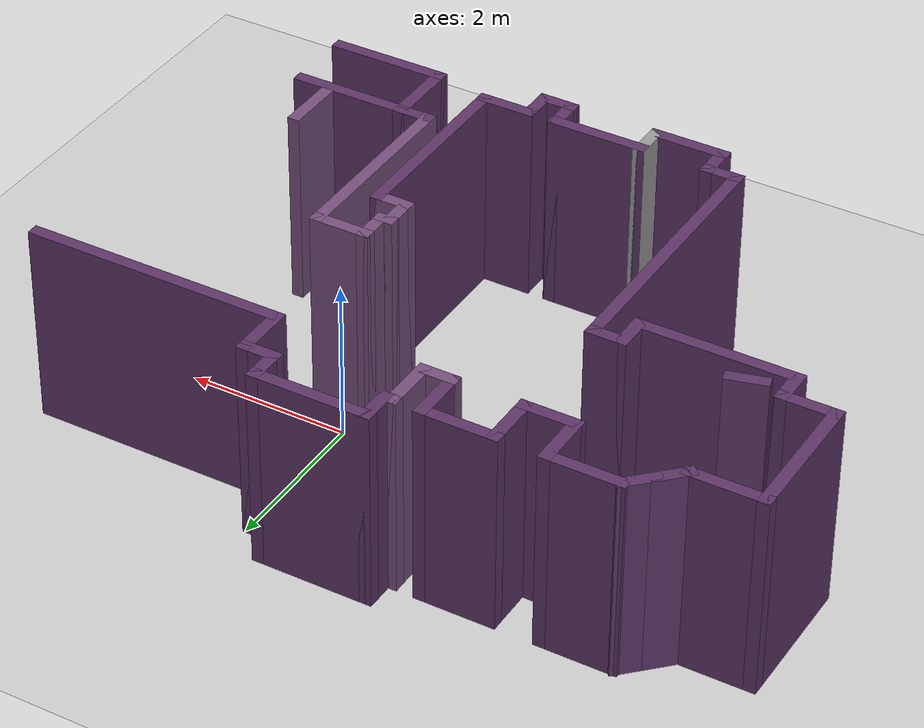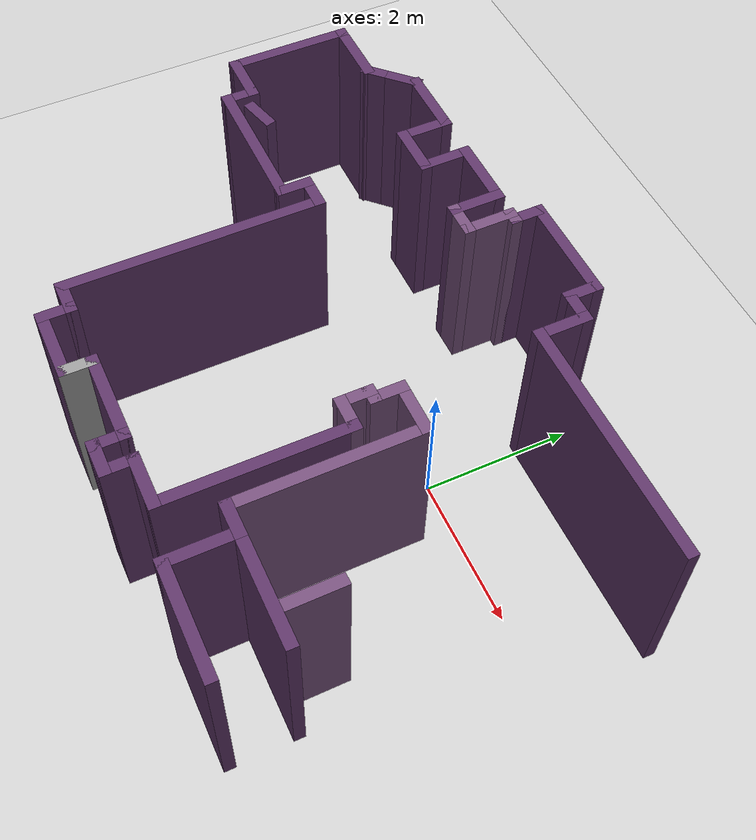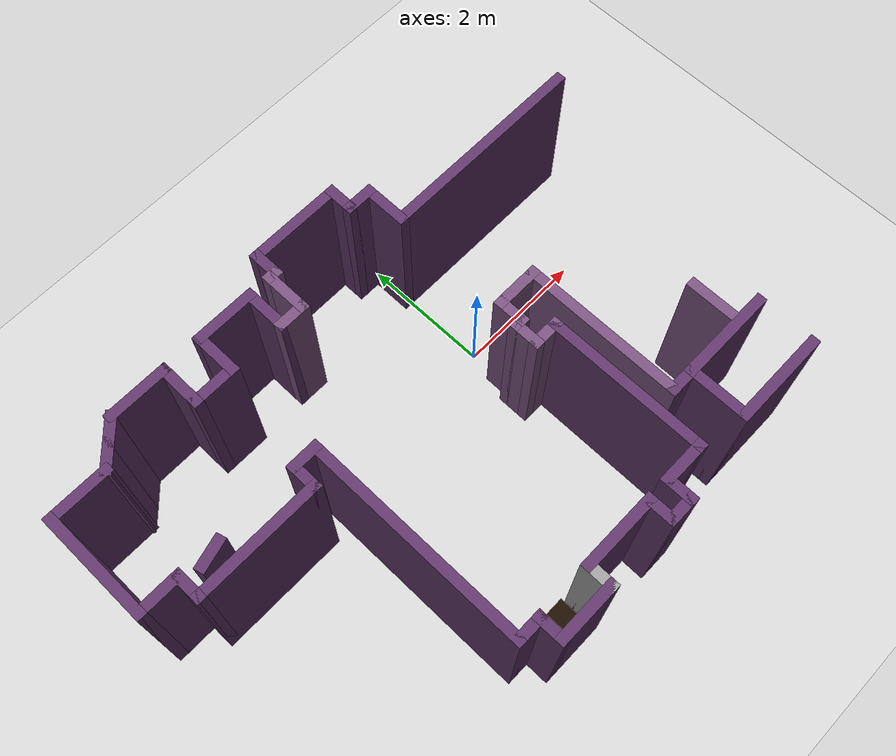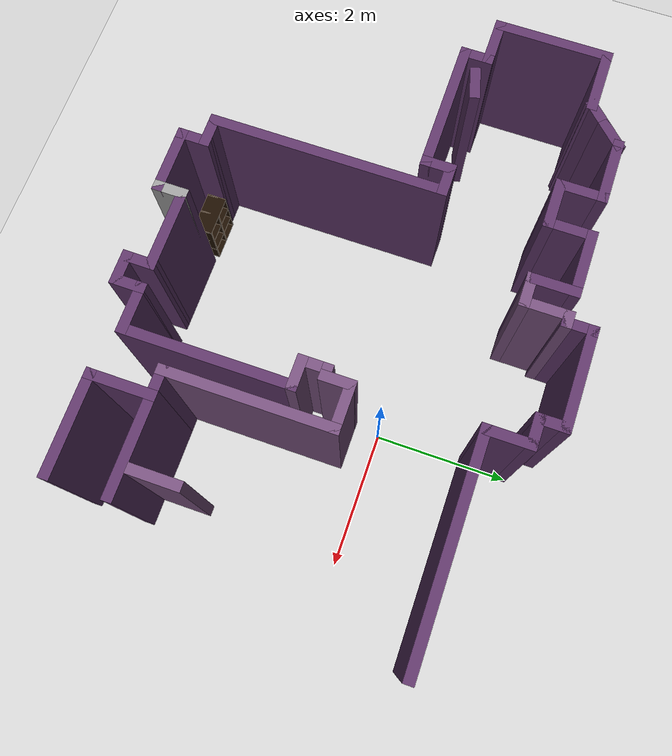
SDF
<sdf version="1.6">
 <world name="default">
  <model name="ground_plane">
   <static>1</static>
   <link name="link">
    <collision name="collision">
     <geometry><plane><normal>0 0 1</normal><size>100 100</size></plane></geometry>
     <surface>
      <contact><collide_bitmask>65535</collide_bitmask></contact>
      <friction><ode><mu>100</mu><mu2>50</mu2></ode></friction>
     </surface>
    </collision>
    <visual name="visual">
     <cast_shadows>0</cast_shadows>
     <geometry><plane><normal>0 0 1</normal><size>100 100</size></plane></geometry>
     <material>
      <script><uri>file://media/materials/scripts/gazebo.material</uri><name>Gazebo/Grey</name></script>
     </material>
    </visual>
   </link>
  </model>
  <model name="map_35">
   <pose>1.49139 -0.27307 0 0 -0 0</pose>
   <link name="Wall_10">
    <collision name="Wall_10_Collision">
     <geometry><box><size>1.5 0.15 2.5</size></box></geometry>
     <pose>0 0 1.25 0 -0 0</pose>
    </collision>
    <visual name="Wall_10_Visual">
     <pose>0 0 1.25 0 -0 0</pose>
     <geometry><box><size>1.5 0.15 2.5</size></box></geometry>
     <material>
      <script><uri>file://media/materials/scripts/gazebo.material</uri><name>Gazebo/Grey</name></script>
      <ambient>0.360784 0.207843 0.4 1</ambient>
     </material>
     <meta><layer>0</layer></meta>
    </visual>
    <pose>-2.56239 2.57249 0 0 -0 3.14159</pose>
   </link>
   <link name="Wall_11">
    <collision name="Wall_11_Collision">
     <geometry><box><size>0.5 0.15 2.5</size></box></geometry>
     <pose>0 0 1.25 0 -0 0</pose>
    </collision>
    <visual name="Wall_11_Visual">
     <pose>0 0 1.25 0 -0 0</pose>
     <geometry><box><size>0.5 0.15 2.5</size></box></geometry>
     <material>
      <script><uri>file://media/materials/scripts/gazebo.material</uri><name>Gazebo/Grey</name></script>
      <ambient>0.360784 0.207843 0.4 1</ambient>
     </material>
     <meta><layer>0</layer></meta>
    </visual>
    <pose>-3.23739 2.39749 0 0 -0 -1.5708</pose>
   </link>
   <link name="Wall_12">
    <collision name="Wall_12_Collision">
     <geometry><box><size>0.25 0.15 2.5</size></box></geometry>
     <pose>0 0 1.25 0 -0 0</pose>
    </collision>
    <visual name="Wall_12_Visual">
     <pose>0 0 1.25 0 -0 0</pose>
     <geometry><box><size>0.25 0.15 2.5</size></box></geometry>
     <material>
      <script><uri>file://media/materials/scripts/gazebo.material</uri><name>Gazebo/Grey</name></script>
      <ambient>0.458824 0.313726 0.482353 1</ambient>
     </material>
     <meta><layer>0</layer></meta>
    </visual>
    <pose>-3.28739 2.22249 0 0 -0 3.14159</pose>
   </link>
   <link name="Wall_13">
    <collision name="Wall_13_Collision">
     <geometry><box><size>0.75 0.15 2.5</size></box></geometry>
     <pose>0 0 1.25 0 -0 0</pose>
    </collision>
    <visual name="Wall_13_Visual">
     <pose>0 0 1.25 0 -0 0</pose>
     <geometry><box><size>0.75 0.15 2.5</size></box></geometry>
     <material>
      <script><uri>file://media/materials/scripts/gazebo.material</uri><name>Gazebo/Grey</name></script>
      <ambient>0.458824 0.313726 0.482353 1</ambient>
     </material>
     <meta><layer>0</layer></meta>
    </visual>
    <pose>-3.33739 1.92249 0 0 -0 -1.5708</pose>
   </link>
   <link name="Wall_14">
    <collision name="Wall_14_Collision">
     <geometry><box><size>0.5 0.15 2.5</size></box></geometry>
     <pose>0 0 1.25 0 -0 0</pose>
    </collision>
    <visual name="Wall_14_Visual">
     <pose>0 0 1.25 0 -0 0</pose>
     <geometry><box><size>0.5 0.15 2.5</size></box></geometry>
     <material>
      <script><uri>file://media/materials/scripts/gazebo.material</uri><name>Gazebo/Grey</name></script>
      <ambient>0.458824 0.313726 0.482353 1</ambient>
     </material>
     <meta><layer>0</layer></meta>
    </visual>
    <pose>-3.51239 1.62249 0 0 -0 3.14159</pose>
   </link>
   <link name="Wall_155">
    <collision name="Wall_155_Collision">
     <geometry><box><size>0.5 0.15 2.5</size></box></geometry>
     <pose>0 0 1.25 0 -0 0</pose>
    </collision>
    <visual name="Wall_155_Visual">
     <pose>0 0 1.25 0 -0 0</pose>
     <geometry><box><size>0.5 0.15 2.5</size></box></geometry>
     <material>
      <script><uri>file://media/materials/scripts/gazebo.material</uri><name>Gazebo/Grey</name></script>
      <ambient>0.360784 0.207843 0.4 1</ambient>
     </material>
     <meta><layer>0</layer></meta>
    </visual>
    <pose>-6.29627 0.057679 0 0 -0 0.261799</pose>
   </link>
   <link name="Wall_17">
    <collision name="Wall_17_Collision">
     <geometry><box><size>0.75 0.15 2.5</size></box></geometry>
     <pose>0 0 1.25 0 -0 0</pose>
    </collision>
    <visual name="Wall_17_Visual">
     <pose>0 0 1.25 0 -0 0</pose>
     <geometry><box><size>0.75 0.15 2.5</size></box></geometry>
     <material>
      <script><uri>file://media/materials/scripts/gazebo.material</uri><name>Gazebo/Grey</name></script>
      <ambient>0.360784 0.207843 0.4 1</ambient>
     </material>
     <meta><layer>0</layer></meta>
    </visual>
    <pose>-3.68739 1.92249 0 0 -0 1.5708</pose>
   </link>
   <link name="Wall_18">
    <collision name="Wall_18_Collision">
     <geometry><box><size>1 0.15 2.5</size></box></geometry>
     <pose>0 0 1.25 0 -0 0</pose>
    </collision>
    <visual name="Wall_18_Visual">
     <pose>0 0 1.25 0 -0 0</pose>
     <geometry><box><size>1 0.15 2.5</size></box></geometry>
     <material>
      <script><uri>file://media/materials/scripts/gazebo.material</uri><name>Gazebo/Grey</name></script>
      <ambient>0.360784 0.207843 0.4 1</ambient>
     </material>
     <meta><layer>0</layer></meta>
    </visual>
    <pose>-4.11239 2.22249 0 0 -0 3.14159</pose>
   </link>
   <link name="Wall_19">
    <collision name="Wall_19_Collision">
     <geometry><box><size>0.75 0.15 2.5</size></box></geometry>
     <pose>0 0 1.25 0 -0 0</pose>
    </collision>
    <visual name="Wall_19_Visual">
     <pose>0 0 1.25 0 -0 0</pose>
     <geometry><box><size>0.75 0.15 2.5</size></box></geometry>
     <material>
      <script><uri>file://media/materials/scripts/gazebo.material</uri><name>Gazebo/Grey</name></script>
      <ambient>0.360784 0.207843 0.4 1</ambient>
     </material>
     <meta><layer>0</layer></meta>
    </visual>
    <pose>-4.53739 1.92249 0 0 -0 -1.5708</pose>
   </link>
   <link name="Wall_20">
    <collision name="Wall_20_Collision">
     <geometry><box><size>0.75 0.15 2.5</size></box></geometry>
     <pose>0 0 1.25 0 -0 0</pose>
    </collision>
    <visual name="Wall_20_Visual">
     <pose>0 0 1.25 0 -0 0</pose>
     <geometry><box><size>0.75 0.15 2.5</size></box></geometry>
     <material>
      <script><uri>file://media/materials/scripts/gazebo.material</uri><name>Gazebo/Grey</name></script>
      <ambient>0.360784 0.207843 0.4 1</ambient>
     </material>
     <meta><layer>0</layer></meta>
    </visual>
    <pose>-4.83739 1.62249 0 0 -0 3.14159</pose>
   </link>
   <link name="Wall_21">
    <collision name="Wall_21_Collision">
     <geometry><box><size>0.75 0.15 2.5</size></box></geometry>
     <pose>0 0 1.25 0 -0 0</pose>
    </collision>
    <visual name="Wall_21_Visual">
     <pose>0 0 1.25 0 -0 0</pose>
     <geometry><box><size>0.75 0.15 2.5</size></box></geometry>
     <material>
      <script><uri>file://media/materials/scripts/gazebo.material</uri><name>Gazebo/Grey</name></script>
      <ambient>0.360784 0.207843 0.4 1</ambient>
     </material>
     <meta><layer>0</layer></meta>
    </visual>
    <pose>-5.13739 1.92249 0 0 -0 1.5708</pose>
   </link>
   <link name="Wall_22">
    <collision name="Wall_22_Collision">
     <geometry><box><size>1 0.15 2.5</size></box></geometry>
     <pose>0 0 1.25 0 -0 0</pose>
    </collision>
    <visual name="Wall_22_Visual">
     <pose>0 0 1.25 0 -0 0</pose>
     <geometry><box><size>1 0.15 2.5</size></box></geometry>
     <material>
      <script><uri>file://media/materials/scripts/gazebo.material</uri><name>Gazebo/Grey</name></script>
      <ambient>0.360784 0.207843 0.4 1</ambient>
     </material>
     <meta><layer>0</layer></meta>
    </visual>
    <pose>-5.56239 2.22249 0 0 -0 3.14159</pose>
   </link>
   <link name="Wall_23">
    <collision name="Wall_23_Collision">
     <geometry><box><size>0.5 0.15 2.5</size></box></geometry>
     <pose>0 0 1.25 0 -0 0</pose>
    </collision>
    <visual name="Wall_23_Visual">
     <pose>0 0 1.25 0 -0 0</pose>
     <geometry><box><size>0.5 0.15 2.5</size></box></geometry>
     <material>
      <script><uri>file://media/materials/scripts/gazebo.material</uri><name>Gazebo/Grey</name></script>
      <ambient>0.360784 0.207843 0.4 1</ambient>
     </material>
     <meta><layer>0</layer></meta>
    </visual>
    <pose>-6.11113 2.09874 0 0 -0 -2.35619</pose>
   </link>
   <link name="Wall_24">
    <collision name="Wall_24_Collision">
     <geometry><box><size>0.5 0.15 2.5</size></box></geometry>
     <pose>0 0 1.25 0 -0 0</pose>
    </collision>
    <visual name="Wall_24_Visual">
     <pose>0 0 1.25 0 -0 0</pose>
     <geometry><box><size>0.5 0.15 2.5</size></box></geometry>
     <material>
      <script><uri>file://media/materials/scripts/gazebo.material</uri><name>Gazebo/Grey</name></script>
      <ambient>0.360784 0.207843 0.4 1</ambient>
     </material>
     <meta><layer>0</layer></meta>
    </visual>
    <pose>-6.35862 1.85126 0 0 -0 -2.35619</pose>
   </link>
   <link name="Wall_25">
    <collision name="Wall_25_Collision">
     <geometry><box><size>1 0.15 2.5</size></box></geometry>
     <pose>0 0 1.25 0 -0 0</pose>
    </collision>
    <visual name="Wall_25_Visual">
     <pose>0 0 1.25 0 -0 0</pose>
     <geometry><box><size>1 0.15 2.5</size></box></geometry>
     <material>
      <script><uri>file://media/materials/scripts/gazebo.material</uri><name>Gazebo/Grey</name></script>
      <ambient>0.360784 0.207843 0.4 1</ambient>
     </material>
     <meta><layer>0</layer></meta>
    </visual>
    <pose>-6.90736 1.72751 0 0 -0 3.14159</pose>
   </link>
   <link name="Wall_26">
    <collision name="Wall_26_Collision">
     <geometry><box><size>1.75 0.15 2.5</size></box></geometry>
     <pose>0 0 1.25 0 -0 0</pose>
    </collision>
    <visual name="Wall_26_Visual">
     <pose>0 0 1.25 0 -0 0</pose>
     <geometry><box><size>1.75 0.15 2.5</size></box></geometry>
     <material>
      <script><uri>file://media/materials/scripts/gazebo.material</uri><name>Gazebo/Grey</name></script>
      <ambient>0.360784 0.207843 0.4 1</ambient>
     </material>
     <meta><layer>0</layer></meta>
    </visual>
    <pose>-7.33236 0.927513 0 0 -0 -1.5708</pose>
   </link>
   <link name="Wall_27">
    <collision name="Wall_27_Collision">
     <geometry><box><size>0.75 0.15 2.5</size></box></geometry>
     <pose>0 0 1.25 0 -0 0</pose>
    </collision>
    <visual name="Wall_27_Visual">
     <pose>0 0 1.25 0 -0 0</pose>
     <geometry><box><size>0.75 0.15 2.5</size></box></geometry>
     <material>
      <script><uri>file://media/materials/scripts/gazebo.material</uri><name>Gazebo/Grey</name></script>
      <ambient>0.360784 0.207843 0.4 1</ambient>
     </material>
     <meta><layer>0</layer></meta>
    </visual>
    <pose>-7.03236 0.127513 0 0 -0 0</pose>
   </link>
   <link name="Wall_28">
    <collision name="Wall_28_Collision">
     <geometry><box><size>0.5 0.15 2.5</size></box></geometry>
     <pose>0 0 1.25 0 -0 0</pose>
    </collision>
    <visual name="Wall_28_Visual">
     <pose>0 0 1.25 0 -0 0</pose>
     <geometry><box><size>0.5 0.15 2.5</size></box></geometry>
     <material>
      <script><uri>file://media/materials/scripts/gazebo.material</uri><name>Gazebo/Grey</name></script>
      <ambient>0.360784 0.207843 0.4 1</ambient>
     </material>
     <meta><layer>0</layer></meta>
    </visual>
    <pose>-6.73236 -0.047487 0 0 -0 -1.5708</pose>
   </link>
   <link name="Wall_29">
    <collision name="Wall_29_Collision">
     <geometry><box><size>2 0.15 2.5</size></box></geometry>
     <pose>0 0 1.25 0 -0 0</pose>
    </collision>
    <visual name="Wall_29_Visual">
     <pose>0 0 1.25 0 -0 0</pose>
     <geometry><box><size>2 0.15 2.5</size></box></geometry>
     <material>
      <script><uri>file://media/materials/scripts/gazebo.material</uri><name>Gazebo/Grey</name></script>
      <ambient>0.360784 0.207843 0.4 1</ambient>
     </material>
     <meta><layer>0</layer></meta>
    </visual>
    <pose>-5.80736 -0.222487 0 0 -0 0</pose>
   </link>
   <link name="Wall_30">
    <collision name="Wall_30_Collision">
     <geometry><box><size>0.5 0.15 2.5</size></box></geometry>
     <pose>0 0 1.25 0 -0 0</pose>
    </collision>
    <visual name="Wall_30_Visual">
     <pose>0 0 1.25 0 -0 0</pose>
     <geometry><box><size>0.5 0.15 2.5</size></box></geometry>
     <material>
      <script><uri>file://media/materials/scripts/gazebo.material</uri><name>Gazebo/Grey</name></script>
      <ambient>0.360784 0.207843 0.4 1</ambient>
     </material>
     <meta><layer>0</layer></meta>
    </visual>
    <pose>-4.88236 -0.047487 0 0 -0 1.5708</pose>
   </link>
   <link name="Wall_31">
    <collision name="Wall_31_Collision">
     <geometry><box><size>0.5 0.15 2.5</size></box></geometry>
     <pose>0 0 1.25 0 -0 0</pose>
    </collision>
    <visual name="Wall_31_Visual">
     <pose>0 0 1.25 0 -0 0</pose>
     <geometry><box><size>0.5 0.15 2.5</size></box></geometry>
     <material>
      <script><uri>file://media/materials/scripts/gazebo.material</uri><name>Gazebo/Grey</name></script>
      <ambient>0.360784 0.207843 0.4 1</ambient>
     </material>
     <meta><layer>0</layer></meta>
    </visual>
    <pose>-4.70736 0.127513 0 0 -0 0</pose>
   </link>
   <link name="Wall_32">
    <collision name="Wall_32_Collision">
     <geometry><box><size>3.5 0.15 2.5</size></box></geometry>
     <pose>0 0 1.25 0 -0 0</pose>
    </collision>
    <visual name="Wall_32_Visual">
     <pose>0 0 1.25 0 -0 0</pose>
     <geometry><box><size>3.5 0.15 2.5</size></box></geometry>
     <material>
      <script><uri>file://media/materials/scripts/gazebo.material</uri><name>Gazebo/Grey</name></script>
      <ambient>0.360784 0.207843 0.4 1</ambient>
     </material>
     <meta><layer>0</layer></meta>
    </visual>
    <pose>-4.53236 -1.54749 0 0 -0 -1.5708</pose>
   </link>
   <link name="Wall_33">
    <collision name="Wall_33_Collision">
     <geometry><box><size>0.5 0.15 2.5</size></box></geometry>
     <pose>0 0 1.25 0 -0 0</pose>
    </collision>
    <visual name="Wall_33_Visual">
     <pose>0 0 1.25 0 -0 0</pose>
     <geometry><box><size>0.5 0.15 2.5</size></box></geometry>
     <material>
      <script><uri>file://media/materials/scripts/gazebo.material</uri><name>Gazebo/Grey</name></script>
      <ambient>0.360784 0.207843 0.4 1</ambient>
     </material>
     <meta><layer>0</layer></meta>
    </visual>
    <pose>-4.35736 -3.22249 0 0 -0 0</pose>
   </link>
   <link name="Wall_34">
    <collision name="Wall_34_Collision">
     <geometry><box><size>0.5 0.15 2.5</size></box></geometry>
     <pose>0 0 1.25 0 -0 0</pose>
    </collision>
    <visual name="Wall_34_Visual">
     <pose>0 0 1.25 0 -0 0</pose>
     <geometry><box><size>0.5 0.15 2.5</size></box></geometry>
     <material>
      <script><uri>file://media/materials/scripts/gazebo.material</uri><name>Gazebo/Grey</name></script>
      <ambient>0.360784 0.207843 0.4 1</ambient>
     </material>
     <meta><layer>0</layer></meta>
    </visual>
    <pose>-4.18236 -3.39749 0 0 -0 -1.5708</pose>
   </link>
   <link name="Wall_35">
    <collision name="Wall_35_Collision">
     <geometry><box><size>1 0.15 2.5</size></box></geometry>
     <pose>0 0 1.25 0 -0 0</pose>
    </collision>
    <visual name="Wall_35_Visual">
     <pose>0 0 1.25 0 -0 0</pose>
     <geometry><box><size>1 0.15 2.5</size></box></geometry>
     <material>
      <script><uri>file://media/materials/scripts/gazebo.material</uri><name>Gazebo/Grey</name></script>
      <ambient>0.360784 0.207843 0.4 1</ambient>
     </material>
     <meta><layer>0</layer></meta>
    </visual>
    <pose>-3.75736 -3.57249 0 0 -0 0</pose>
   </link>
   <link name="Wall_36">
    <collision name="Wall_36_Collision">
     <geometry><box><size>0.5 0.15 2.5</size></box></geometry>
     <pose>0 0 1.25 0 -0 0</pose>
    </collision>
    <visual name="Wall_36_Visual">
     <pose>0 0 1.25 0 -0 0</pose>
     <geometry><box><size>0.5 0.15 2.5</size></box></geometry>
     <material>
      <script><uri>file://media/materials/scripts/gazebo.material</uri><name>Gazebo/Grey</name></script>
      <ambient>1 1 1 1</ambient>
     </material>
     <meta><layer>0</layer></meta>
    </visual>
    <pose>-3.33236 -3.39749 0 0 -0 1.5708</pose>
   </link>
   <link name="Wall_37">
    <collision name="Wall_37_Collision">
     <geometry><box><size>1.25 0.15 2.5</size></box></geometry>
     <pose>0 0 1.25 0 -0 0</pose>
    </collision>
    <visual name="Wall_37_Visual">
     <pose>0 0 1.25 0 -0 0</pose>
     <geometry><box><size>1.25 0.15 2.5</size></box></geometry>
     <material>
      <script><uri>file://media/materials/scripts/gazebo.material</uri><name>Gazebo/Grey</name></script>
      <ambient>0.360784 0.207843 0.4 1</ambient>
     </material>
     <meta><layer>0</layer></meta>
    </visual>
    <pose>-2.78236 -3.22249 0 0 -0 0</pose>
   </link>
   <link name="Wall_40">
    <collision name="Wall_40_Collision">
     <geometry><box><size>0.5 0.15 2.5</size></box></geometry>
     <pose>0 0 1.25 0 -0 0</pose>
    </collision>
    <visual name="Wall_40_Visual">
     <pose>0 0 1.25 0 -0 0</pose>
     <geometry><box><size>0.5 0.15 2.5</size></box></geometry>
     <material>
      <script><uri>file://media/materials/scripts/gazebo.material</uri><name>Gazebo/Grey</name></script>
      <ambient>0.360784 0.207843 0.4 1</ambient>
     </material>
     <meta><layer>0</layer></meta>
    </visual>
    <pose>-2.23236 -3.39749 0 0 -0 -1.5708</pose>
   </link>
   <link name="Wall_41">
    <collision name="Wall_41_Collision">
     <geometry><box><size>0.5 0.15 2.5</size></box></geometry>
     <pose>0 0 1.25 0 -0 0</pose>
    </collision>
    <visual name="Wall_41_Visual">
     <pose>0 0 1.25 0 -0 0</pose>
     <geometry><box><size>0.5 0.15 2.5</size></box></geometry>
     <material>
      <script><uri>file://media/materials/scripts/gazebo.material</uri><name>Gazebo/Grey</name></script>
      <ambient>0.360784 0.207843 0.4 1</ambient>
     </material>
     <meta><layer>0</layer></meta>
    </visual>
    <pose>-2.05736 -3.57249 0 0 -0 0</pose>
   </link>
   <link name="Wall_42">
    <collision name="Wall_42_Collision">
     <geometry><box><size>0.5 0.15 2.5</size></box></geometry>
     <pose>0 0 1.25 0 -0 0</pose>
    </collision>
    <visual name="Wall_42_Visual">
     <pose>0 0 1.25 0 -0 0</pose>
     <geometry><box><size>0.5 0.15 2.5</size></box></geometry>
     <material>
      <script><uri>file://media/materials/scripts/gazebo.material</uri><name>Gazebo/Grey</name></script>
      <ambient>0.360784 0.207843 0.4 1</ambient>
     </material>
     <meta><layer>0</layer></meta>
    </visual>
    <pose>-1.88236 -3.39749 0 0 -0 1.5708</pose>
   </link>
   <link name="Wall_43">
    <collision name="Wall_43_Collision">
     <geometry><box><size>0.75 0.15 2.5</size></box></geometry>
     <pose>0 0 1.25 0 -0 0</pose>
    </collision>
    <visual name="Wall_43_Visual">
     <pose>0 0 1.25 0 -0 0</pose>
     <geometry><box><size>0.75 0.15 2.5</size></box></geometry>
     <material>
      <script><uri>file://media/materials/scripts/gazebo.material</uri><name>Gazebo/Grey</name></script>
      <ambient>0.360784 0.207843 0.4 1</ambient>
     </material>
     <meta><layer>0</layer></meta>
    </visual>
    <pose>-1.58236 -3.22249 0 0 -0 0</pose>
   </link>
   <link name="Wall_46">
    <collision name="Wall_46_Collision">
     <geometry><box><size>2.5 0.15 2.5</size></box></geometry>
     <pose>0 0 1.25 0 -0 0</pose>
    </collision>
    <visual name="Wall_46_Visual">
     <pose>0 0 1.25 0 -0 0</pose>
     <geometry><box><size>2.5 0.15 2.5</size></box></geometry>
     <material>
      <script><uri>file://media/materials/scripts/gazebo.material</uri><name>Gazebo/Grey</name></script>
      <ambient>0.360784 0.207843 0.4 1</ambient>
     </material>
     <meta><layer>0</layer></meta>
    </visual>
    <pose>-1.28236 -2.04749 0 0 -0 1.5708</pose>
   </link>
   <link name="Wall_49">
    <collision name="Wall_49_Collision">
     <geometry><box><size>0.5 0.15 2.5</size></box></geometry>
     <pose>0 0 1.25 0 -0 0</pose>
    </collision>
    <visual name="Wall_49_Visual">
     <pose>0 0 1.25 0 -0 0</pose>
     <geometry><box><size>0.5 0.15 2.5</size></box></geometry>
     <material>
      <script><uri>file://media/materials/scripts/gazebo.material</uri><name>Gazebo/Grey</name></script>
      <ambient>0.458824 0.313726 0.482353 1</ambient>
     </material>
     <meta><layer>0</layer></meta>
    </visual>
    <pose>-1.45736 -0.872487 0 0 -0 3.14159</pose>
   </link>
   <link name="Wall_50">
    <collision name="Wall_50_Collision">
     <geometry><box><size>0.5 0.15 2.5</size></box></geometry>
     <pose>0 0 1.25 0 -0 0</pose>
    </collision>
    <visual name="Wall_50_Visual">
     <pose>0 0 1.25 0 -0 0</pose>
     <geometry><box><size>0.5 0.15 2.5</size></box></geometry>
     <material>
      <script><uri>file://media/materials/scripts/gazebo.material</uri><name>Gazebo/Grey</name></script>
      <ambient>0.458824 0.313726 0.482353 1</ambient>
     </material>
     <meta><layer>0</layer></meta>
    </visual>
    <pose>-1.63236 -0.697487 0 0 -0 1.5708</pose>
   </link>
   <link name="Wall_51">
    <collision name="Wall_51_Collision">
     <geometry><box><size>0.25 0.15 2.5</size></box></geometry>
     <pose>0 0 1.25 0 -0 0</pose>
    </collision>
    <visual name="Wall_51_Visual">
     <pose>0 0 1.25 0 -0 0</pose>
     <geometry><box><size>0.25 0.15 2.5</size></box></geometry>
     <material>
      <script><uri>file://media/materials/scripts/gazebo.material</uri><name>Gazebo/Grey</name></script>
      <ambient>0.458824 0.313726 0.482353 1</ambient>
     </material>
     <meta><layer>0</layer></meta>
    </visual>
    <pose>-1.58236 -0.522487 0 0 -0 0</pose>
   </link>
   <link name="Wall_52">
    <collision name="Wall_52_Collision">
     <geometry><box><size>0.5 0.15 2.5</size></box></geometry>
     <pose>0 0 1.25 0 -0 0</pose>
    </collision>
    <visual name="Wall_52_Visual">
     <pose>0 0 1.25 0 -0 0</pose>
     <geometry><box><size>0.5 0.15 2.5</size></box></geometry>
     <material>
      <script><uri>file://media/materials/scripts/gazebo.material</uri><name>Gazebo/Grey</name></script>
      <ambient>0.458824 0.313726 0.482353 1</ambient>
     </material>
     <meta><layer>0</layer></meta>
    </visual>
    <pose>-1.53236 -0.347487 0 0 -0 1.5708</pose>
   </link>
   <link name="Wall_53">
    <collision name="Wall_53_Collision">
     <geometry><box><size>0.75 0.15 2.5</size></box></geometry>
     <pose>0 0 1.25 0 -0 0</pose>
    </collision>
    <visual name="Wall_53_Visual">
     <pose>0 0 1.25 0 -0 0</pose>
     <geometry><box><size>0.75 0.15 2.5</size></box></geometry>
     <material>
      <script><uri>file://media/materials/scripts/gazebo.material</uri><name>Gazebo/Grey</name></script>
      <ambient>0.458824 0.313726 0.482353 1</ambient>
     </material>
     <meta><layer>0</layer></meta>
    </visual>
    <pose>-1.23236 -0.172487 0 0 -0 0</pose>
   </link>
   <link name="Wall_54">
    <collision name="Wall_54_Collision">
     <geometry><box><size>2.5 0.15 2.5</size></box></geometry>
     <pose>0 0 1.25 0 -0 0</pose>
    </collision>
    <visual name="Wall_54_Visual">
     <pose>0 0 1.25 0 -0 0</pose>
     <geometry><box><size>2.5 0.15 2.5</size></box></geometry>
     <material>
      <script><uri>file://media/materials/scripts/gazebo.material</uri><name>Gazebo/Grey</name></script>
      <ambient>0.458824 0.313726 0.482353 1</ambient>
     </material>
     <meta><layer>0</layer></meta>
    </visual>
    <pose>-0.932362 -1.34749 0 0 -0 -1.5708</pose>
   </link>
   <link name="Wall_55">
    <collision name="Wall_55_Collision">
     <geometry><box><size>0.5 0.15 2.5</size></box></geometry>
     <pose>0 0 1.25 0 -0 0</pose>
    </collision>
    <visual name="Wall_55_Visual">
     <pose>0 0 1.25 0 -0 0</pose>
     <geometry><box><size>0.5 0.15 2.5</size></box></geometry>
     <material>
      <script><uri>file://media/materials/scripts/gazebo.material</uri><name>Gazebo/Grey</name></script>
      <ambient>0.360784 0.207843 0.4 1</ambient>
     </material>
     <meta><layer>0</layer></meta>
    </visual>
    <pose>-0.757362 -2.52249 0 0 -0 0</pose>
   </link>
   <link name="Wall_56">
    <collision name="Wall_56_Collision">
     <geometry><box><size>1 0.15 2.5</size></box></geometry>
     <pose>0 0 1.25 0 -0 0</pose>
    </collision>
    <visual name="Wall_56_Visual">
     <pose>0 0 1.25 0 -0 0</pose>
     <geometry><box><size>1 0.15 2.5</size></box></geometry>
     <material>
      <script><uri>file://media/materials/scripts/gazebo.material</uri><name>Gazebo/Grey</name></script>
      <ambient>0.360784 0.207843 0.4 1</ambient>
     </material>
     <meta><layer>0</layer></meta>
    </visual>
    <pose>-0.582361 -2.94749 0 0 -0 -1.5708</pose>
   </link>
   <link name="Wall_57">
    <collision name="Wall_57_Collision">
     <geometry><box><size>1.5 0.15 2.5</size></box></geometry>
     <pose>0 0 1.25 0 -0 0</pose>
    </collision>
    <visual name="Wall_57_Visual">
     <pose>0 0 1.25 0 -0 0</pose>
     <geometry><box><size>1.5 0.15 2.5</size></box></geometry>
     <material>
      <script><uri>file://media/materials/scripts/gazebo.material</uri><name>Gazebo/Grey</name></script>
      <ambient>0.360784 0.207843 0.4 1</ambient>
     </material>
     <meta><layer>0</layer></meta>
    </visual>
    <pose>0.092638 -3.37249 0 0 -0 0</pose>
   </link>
   <link name="Wall_59">
    <collision name="Wall_59_Collision">
     <geometry><box><size>1.5 0.15 2.5</size></box></geometry>
     <pose>0 0 1.25 0 -0 0</pose>
    </collision>
    <visual name="Wall_59_Visual">
     <pose>0 0 1.25 0 -0 0</pose>
     <geometry><box><size>1.5 0.15 2.5</size></box></geometry>
     <material>
      <script><uri>file://media/materials/scripts/gazebo.material</uri><name>Gazebo/Grey</name></script>
      <ambient>0.360784 0.207843 0.4 1</ambient>
     </material>
     <meta><layer>0</layer></meta>
    </visual>
    <pose>0.092638 -2.52249 0 0 -0 3.14159</pose>
   </link>
   <link name="Wall_6">
    <collision name="Wall_6_Collision">
     <geometry><box><size>3.25 0.15 2.5</size></box></geometry>
     <pose>0 0 1.25 0 -0 0</pose>
    </collision>
    <visual name="Wall_6_Visual">
     <pose>0 0 1.25 0 -0 0</pose>
     <geometry><box><size>3.25 0.15 2.5</size></box></geometry>
     <material>
      <script><uri>file://media/materials/scripts/gazebo.material</uri><name>Gazebo/Grey</name></script>
      <ambient>0.360784 0.207843 0.4 1</ambient>
     </material>
     <meta><layer>0</layer></meta>
    </visual>
    <pose>0.012613 1.62249 0 0 -0 3.14159</pose>
   </link>
   <link name="Wall_63">
    <collision name="Wall_63_Collision">
     <geometry><box><size>0.75 0.15 2.5</size></box></geometry>
     <pose>0 0 1.25 0 -0 0</pose>
    </collision>
    <visual name="Wall_63_Visual">
     <pose>0 0 1.25 0 -0 0</pose>
     <geometry><box><size>0.75 0.15 2.5</size></box></geometry>
     <material>
      <script><uri>file://media/materials/scripts/gazebo.material</uri><name>Gazebo/Grey</name></script>
      <ambient>0.458824 0.313726 0.482353 1</ambient>
     </material>
     <meta><layer>0</layer></meta>
    </visual>
    <pose>0.373312 -2.08113 0 0 -0 1.5708</pose>
   </link>
   <link name="Wall_7">
    <collision name="Wall_7_Collision">
     <geometry><box><size>0.75 0.15 2.5</size></box></geometry>
     <pose>0 0 1.25 0 -0 0</pose>
    </collision>
    <visual name="Wall_7_Visual">
     <pose>0 0 1.25 0 -0 0</pose>
     <geometry><box><size>0.75 0.15 2.5</size></box></geometry>
     <material>
      <script><uri>file://media/materials/scripts/gazebo.material</uri><name>Gazebo/Grey</name></script>
      <ambient>0.360784 0.207843 0.4 1</ambient>
     </material>
     <meta><layer>0</layer></meta>
    </visual>
    <pose>-1.53739 1.92249 0 0 -0 1.5708</pose>
   </link>
   <link name="Wall_8">
    <collision name="Wall_8_Collision">
     <geometry><box><size>0.5 0.15 2.5</size></box></geometry>
     <pose>0 0 1.25 0 -0 0</pose>
    </collision>
    <visual name="Wall_8_Visual">
     <pose>0 0 1.25 0 -0 0</pose>
     <geometry><box><size>0.5 0.15 2.5</size></box></geometry>
     <material>
      <script><uri>file://media/materials/scripts/gazebo.material</uri><name>Gazebo/Grey</name></script>
      <ambient>0.360784 0.207843 0.4 1</ambient>
     </material>
     <meta><layer>0</layer></meta>
    </visual>
    <pose>-1.71239 2.22249 0 0 -0 3.14159</pose>
   </link>
   <link name="Wall_9">
    <collision name="Wall_9_Collision">
     <geometry><box><size>0.5 0.15 2.5</size></box></geometry>
     <pose>0 0 1.25 0 -0 0</pose>
    </collision>
    <visual name="Wall_9_Visual">
     <pose>0 0 1.25 0 -0 0</pose>
     <geometry><box><size>0.5 0.15 2.5</size></box></geometry>
     <material>
      <script><uri>file://media/materials/scripts/gazebo.material</uri><name>Gazebo/Grey</name></script>
      <ambient>0.360784 0.207843 0.4 1</ambient>
     </material>
     <meta><layer>0</layer></meta>
    </visual>
    <pose>-1.88739 2.39749 0 0 -0 1.5708</pose>
   </link>
   <static>1</static>
  </model>
  <model name="6_Cube_StorageE">
   <link name="Wall_0">
    <pose>0 0 0.01 0 -0 0</pose>
    <inertial>
     <mass>1.6201</mass>
     <inertia><ixx>0.0119</ixx><iyy>0.0631</iyy><izz>0.0513</izz><ixy>0</ixy><ixz>0</ixz><iyz>0</iyz></inertia>
    </inertial>
    <collision name="Wall_0_Collision"><geometry><box><size>0.616 0.296 0.02</size></box></geometry></collision>
    <visual name="Wall_0_Visual">
     <geometry><box><size>0.616 0.296 0.02</size></box></geometry>
     <material>
      <script><uri>file://media/materials/scripts/gazebo.material</uri><name>Gazebo/Grey</name></script>
      <ambient>0.105882 0.0509804 0 1</ambient>
     </material>
    </visual>
   </link>
   <joint name="0_2" type="fixed">
    <pose>-0.308 0 0 0 -0 0</pose>
    <parent>Wall_2</parent>
    <child>Wall_0</child>
    <axis>
     <xyz>1 0 0</xyz>
     <use_parent_model_frame>0</use_parent_model_frame>
     <limit><lower>-1e+16</lower><upper>1e+16</upper></limit>
    </axis>
   </joint>
   <joint name="0_12" type="fixed">
    <parent>Wall_12</parent>
    <child>Wall_0</child>
    <axis>
     <xyz>0 0 1</xyz>
     <use_parent_model_frame>0</use_parent_model_frame>
     <limit><lower>-1e+16</lower><upper>1e+16</upper></limit>
    </axis>
   </joint>
   <joint name="0_4" type="fixed">
    <pose>0.308 0 0 0 -0 0</pose>
    <parent>Wall_4</parent>
    <child>Wall_0</child>
    <axis>
     <xyz>1 0 0</xyz>
     <use_parent_model_frame>0</use_parent_model_frame>
     <limit><lower>-1e+16</lower><upper>1e+16</upper></limit>
    </axis>
   </joint>
   <link name="Wall_10">
    <pose>0 0 0.61 0 -0 0</pose>
    <inertial>
     <mass>1.6201</mass>
     <inertia><ixx>0.0119</ixx><iyy>0.0631</iyy><izz>0.0513</izz><ixy>0</ixy><ixz>0</ixz><iyz>0</iyz></inertia>
    </inertial>
    <collision name="Wall_10_Collision"><geometry><box><size>0.616 0.296 0.02</size></box></geometry></collision>
    <visual name="Wall_10_Visual">
     <geometry><box><size>0.616 0.296 0.02</size></box></geometry>
     <material>
      <script><uri>file://media/materials/scripts/gazebo.material</uri><name>Gazebo/Grey</name></script>
      <ambient>0.105882 0.0509804 0 1</ambient>
     </material>
    </visual>
   </link>
   <joint name="10_2" type="fixed">
    <pose>-0.308 0 0 0 -0 0</pose>
    <parent>Wall_2</parent>
    <child>Wall_10</child>
    <axis>
     <xyz>1 0 0</xyz>
     <use_parent_model_frame>0</use_parent_model_frame>
     <limit><lower>-1e+16</lower><upper>1e+16</upper></limit>
    </axis>
   </joint>
   <joint name="10_12" type="fixed">
    <parent>Wall_12</parent>
    <child>Wall_10</child>
    <axis>
     <xyz>0 0 1</xyz>
     <use_parent_model_frame>0</use_parent_model_frame>
     <limit><lower>-1e+16</lower><upper>1e+16</upper></limit>
    </axis>
   </joint>
   <joint name="10_4" type="fixed">
    <pose>0.308 0 0 0 -0 0</pose>
    <parent>Wall_4</parent>
    <child>Wall_10</child>
    <axis>
     <xyz>1 0 0</xyz>
     <use_parent_model_frame>0</use_parent_model_frame>
     <limit><lower>-1e+16</lower><upper>1e+16</upper></limit>
    </axis>
   </joint>
   <link name="Wall_12">
    <pose>0 0 0.4575 0 -0 0</pose>
    <inertial>
     <mass>2.4065</mass>
     <inertia><ixx>0.0177</ixx><iyy>0.1855</iyy><izz>0.168</izz><ixy>0</ixy><ixz>0</ixz><iyz>0</iyz></inertia>
    </inertial>
    <collision name="Wall_12_Collision"><geometry><box><size>0.02 0.296 0.915</size></box></geometry></collision>
    <visual name="Wall_12_Visual">
     <geometry><box><size>0.02 0.296 0.915</size></box></geometry>
     <material>
      <script><uri>file://media/materials/scripts/gazebo.material</uri><name>Gazebo/Grey</name></script>
      <ambient>0.105882 0.0509804 0 1</ambient>
     </material>
    </visual>
   </link>
   <link name="Wall_2">
    <pose>-0.298 0 0.4575 0 -0 0</pose>
    <inertial>
     <mass>2.4065</mass>
     <inertia><ixx>0.0177</ixx><iyy>0.1855</iyy><izz>0.168</izz><ixy>0</ixy><ixz>0</ixz><iyz>0</iyz></inertia>
    </inertial>
    <collision name="Wall_2_Collision"><geometry><box><size>0.02 0.296 0.915</size></box></geometry></collision>
    <visual name="Wall_2_Visual">
     <geometry><box><size>0.02 0.296 0.915</size></box></geometry>
     <material>
      <script><uri>file://media/materials/scripts/gazebo.material</uri><name>Gazebo/Grey</name></script>
      <ambient>0.105882 0.0509804 0 1</ambient>
     </material>
    </visual>
   </link>
   <link name="Wall_4">
    <pose>0.298 0 0.4575 0 -0 0</pose>
    <inertial>
     <mass>2.4065</mass>
     <inertia><ixx>0.0177</ixx><iyy>0.1855</iyy><izz>0.168</izz><ixy>0</ixy><ixz>0</ixz><iyz>0</iyz></inertia>
    </inertial>
    <collision name="Wall_4_Collision"><geometry><box><size>0.02 0.296 0.915</size></box></geometry></collision>
    <visual name="Wall_4_Visual">
     <geometry><box><size>0.02 0.296 0.915</size></box></geometry>
     <material>
      <script><uri>file://media/materials/scripts/gazebo.material</uri><name>Gazebo/Grey</name></script>
      <ambient>0.105882 0.0509804 0 1</ambient>
     </material>
    </visual>
   </link>
   <link name="Wall_6">
    <pose>0 0 0.905 0 -0 0</pose>
    <inertial>
     <mass>1.6201</mass>
     <inertia><ixx>0.0119</ixx><iyy>0.0631</iyy><izz>0.0513</izz><ixy>0</ixy><ixz>0</ixz><iyz>0</iyz></inertia>
    </inertial>
    <collision name="Wall_6_Collision"><geometry><box><size>0.616 0.296 0.02</size></box></geometry></collision>
    <visual name="Wall_6_Visual">
     <geometry><box><size>0.616 0.296 0.02</size></box></geometry>
     <material>
      <script><uri>file://media/materials/scripts/gazebo.material</uri><name>Gazebo/Grey</name></script>
      <ambient>0.105882 0.0509804 0 1</ambient>
     </material>
    </visual>
   </link>
   <joint name="6_2" type="fixed">
    <pose>-0.308 0 0 0 -0 0</pose>
    <parent>Wall_2</parent>
    <child>Wall_6</child>
    <axis>
     <xyz>2 0 0</xyz>
     <use_parent_model_frame>0</use_parent_model_frame>
     <limit><lower>-1e+16</lower><upper>1e+16</upper></limit>
    </axis>
   </joint>
   <joint name="6_12" type="fixed">
    <parent>Wall_12</parent>
    <child>Wall_6</child>
    <axis>
     <xyz>0 0 1</xyz>
     <use_parent_model_frame>0</use_parent_model_frame>
     <limit><lower>-1e+16</lower><upper>1e+16</upper></limit>
    </axis>
   </joint>
   <joint name="6_4" type="fixed">
    <pose>0.308 0 0 0 -0 0</pose>
    <parent>Wall_4</parent>
    <child>Wall_6</child>
    <axis>
     <xyz>1 0 0</xyz>
     <use_parent_model_frame>0</use_parent_model_frame>
     <limit><lower>-1e+16</lower><upper>1e+16</upper></limit>
    </axis>
   </joint>
   <link name="Wall_8">
    <pose>0 0 0.305 0 -0 0</pose>
    <inertial>
     <mass>1.6201</mass>
     <inertia><ixx>0.0119</ixx><iyy>0.0631</iyy><izz>0.0513</izz><ixy>0</ixy><ixz>0</ixz><iyz>0</iyz></inertia>
    </inertial>
    <collision name="Wall_8_Collision"><geometry><box><size>0.616 0.296 0.02</size></box></geometry></collision>
    <visual name="Wall_8_Visual">
     <geometry><box><size>0.616 0.296 0.02</size></box></geometry>
     <material>
      <script><uri>file://media/materials/scripts/gazebo.material</uri><name>Gazebo/Grey</name></script>
      <ambient>0.105882 0.0509804 0 1</ambient>
     </material>
    </visual>
   </link>
   <joint name="8_2" type="fixed">
    <pose>-0.308 0 0 0 -0 0</pose>
    <parent>Wall_2</parent>
    <child>Wall_8</child>
    <axis>
     <xyz>1 0 0</xyz>
     <use_parent_model_frame>0</use_parent_model_frame>
     <limit><lower>-1e+16</lower><upper>1e+16</upper></limit>
    </axis>
   </joint>
   <joint name="8_12" type="fixed">
    <parent>Wall_12</parent>
    <child>Wall_8</child>
    <axis>
     <xyz>0 0 1</xyz>
     <use_parent_model_frame>0</use_parent_model_frame>
     <limit><lower>-1e+16</lower><upper>1e+16</upper></limit>
    </axis>
   </joint>
   <joint name="8_4" type="fixed">
    <pose>0.308 0 0 0 -0 0</pose>
    <parent>Wall_4</parent>
    <child>Wall_8</child>
    <axis>
     <xyz>1 0 0</xyz>
     <use_parent_model_frame>0</use_parent_model_frame>
     <limit><lower>-1e+16</lower><upper>1e+16</upper></limit>
    </axis>
   </joint>
   <static>1</static>
   <pose>-2.30584 -3.53753 0 0 -0 0</pose>
  </model>
 </world>
</sdf>
